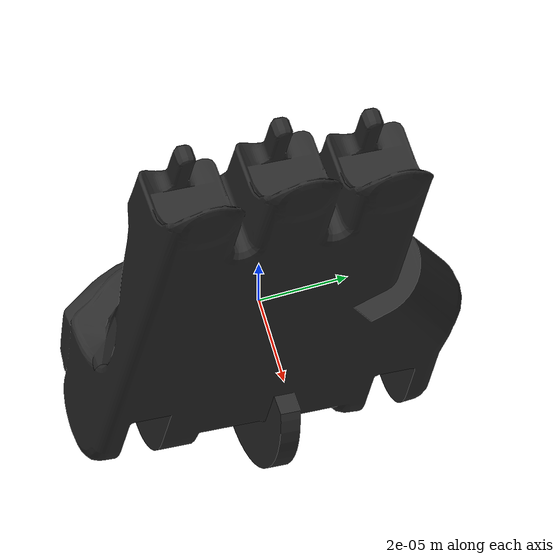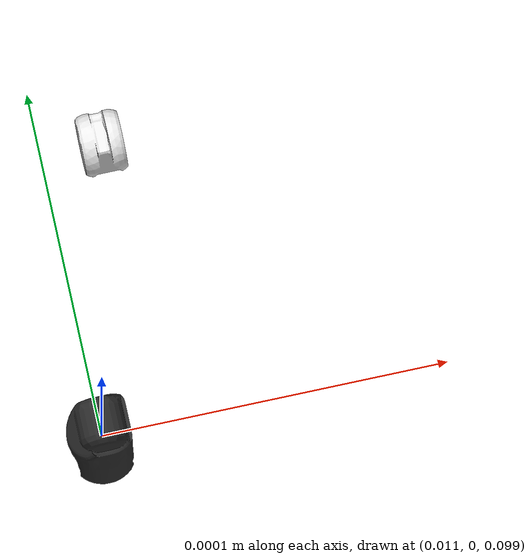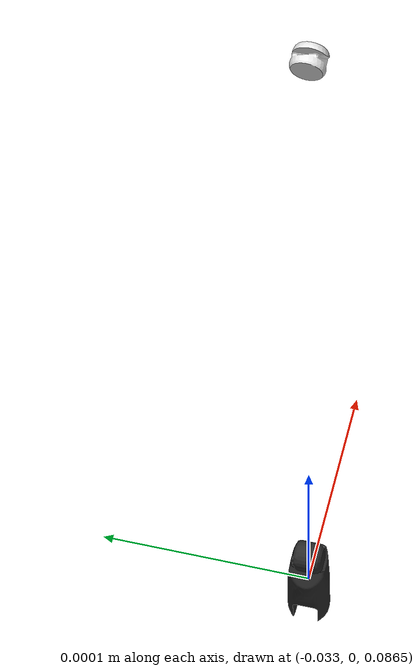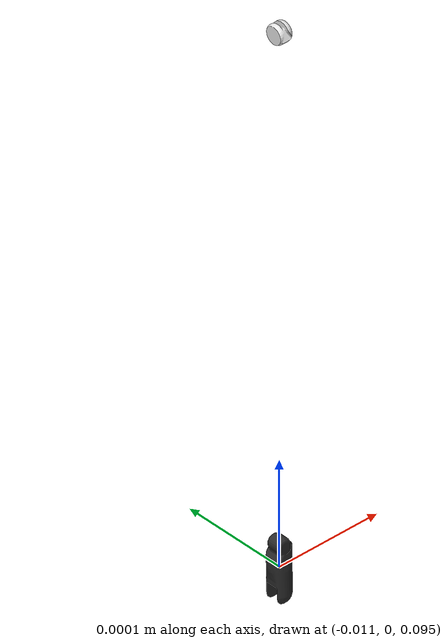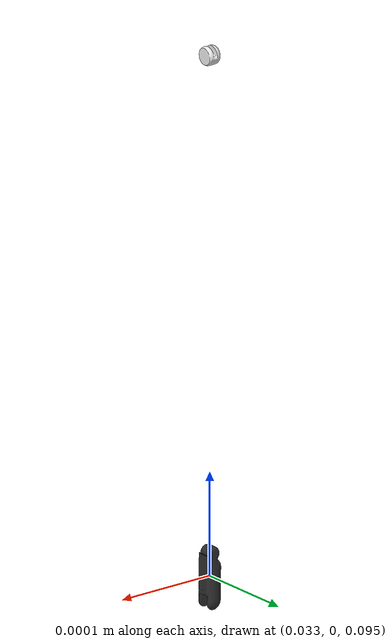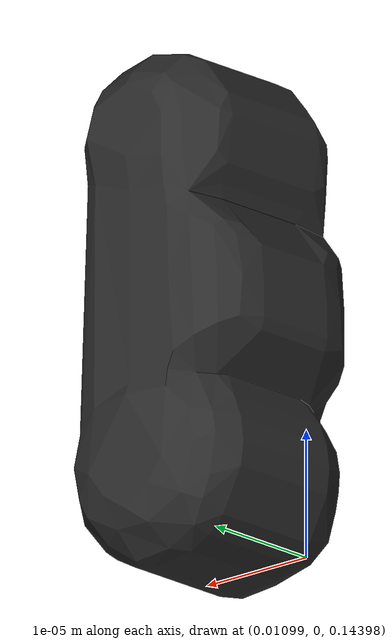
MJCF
<mujoco model="right_shadow_hand">
  <compiler angle="radian" meshdir="assets" autolimits="true"/>

  <option cone="elliptic" impratio="10"/>

  <default>
    <default class="right_hand">
      <mesh scale="0.001 0.001 0.001"/>
      <joint axis="1 0 0" damping="0.05" armature="0.0002" frictionloss="0.01"/>
      <position forcerange="-1 1"/>

      <default class="wrist">
        <joint damping="0.5"/>
        <default class="wrist_y">
          <joint axis="0 1 0" range="-0.523599 0.174533"/>
          <position kp="10" ctrlrange="-0.523599 0.174533" forcerange="-10 10"/>
        </default>
        <default class="wrist_x">
          <joint range="-0.698132 0.488692"/>
          <position kp="8" ctrlrange="-0.698132 0.488692" forcerange="-5 5"/>
        </default>
      </default>

      <default class="thumb">
        <default class="thbase">
          <joint axis="0 0 -1" range="-1.0472 1.0472"/>
          <position kp="0.4" ctrlrange="-1.0472 1.0472" forcerange="-3 3"/>
        </default>
        <default class="thproximal">
          <joint range="0 1.22173"/>
          <position ctrlrange="0 1.22173" forcerange="-2 2"/>
        </default>
        <default class="thhub">
          <joint range="-0.20944 0.20944"/>
          <position kp="0.5" ctrlrange="-0.20944 0.20944"/>
        </default>
        <default class="thmiddle">
          <joint axis="0 -1 0" range="-0.698132 0.698132"/>
          <position kp="1.5" ctrlrange="-0.698132 0.698132"/>
        </default>
        <default class="thdistal">
          <joint range="-0.261799 1.5708"/>
          <position ctrlrange="-0.261799 1.5708"/>
        </default>
      </default>

      <default class="metacarpal">
        <joint axis="0.573576 0 0.819152" range="0 0.785398"/>
        <position ctrlrange="0 0.785398"/>
      </default>
      <default class="knuckle">
        <joint axis="0 -1 0" range="-0.349066 0.349066"/>
        <position ctrlrange="-0.349066 0.349066"/>
      </default>
      <default class="proximal">
        <joint range="-0.261799 1.5708"/>
        <position ctrlrange="-0.261799 1.5708"/>
      </default>
      <default class="middle_distal">
        <joint range="0 1.5708"/>
        <position kp="0.5" ctrlrange="0 3.1415"/>
      </default>

      <default class="plastic">
        <geom solimp="0.5 0.99 0.0001" solref="0.005 1"/>
        <default class="plastic_visual">
          <geom type="mesh" material="black" contype="0" conaffinity="0" group="2"/>
        </default>
        <default class="plastic_collision">
          <geom group="3"/>
        </default>
        <default class="plastic_reference">
          <geom type="mesh" rgba="0 1 0 1" contype="0" conaffinity="0" group="2"/>
        </default>
      </default>
    </default>
  </default>

  <asset>
    <material name="black" specular="0.5" shininess="0.25" rgba="0.16355 0.16355 0.16355 1"/>
    <material name="gray" specular="0.0" shininess="0.25" rgba="0.80848 0.80848 0.80848 1"/>
    <material name="metallic" specular="0" shininess="0.25" rgba="0.9 0.9 0.9 1"/>

    <mesh class="right_hand" file="forearm_0.obj"/>
    <mesh class="right_hand" file="forearm_1.obj"/>
    <mesh class="right_hand" file="forearm_collision.obj"/>
    <mesh class="right_hand" file="wrist.obj"/>
    <mesh class="right_hand" file="palm.obj"/>
    <mesh class="right_hand" file="f_knuckle.obj"/>
    <mesh class="right_hand" file="f_proximal.obj"/>
    <mesh class="right_hand" file="f_middle.obj"/>
    <mesh class="right_hand" file="f_distal_pst.obj"/>
    <mesh class="right_hand" file="lf_metacarpal.obj"/>
    <mesh class="right_hand" file="th_proximal.obj"/>
    <mesh class="right_hand" file="th_middle.obj"/>
    <mesh class="right_hand" file="th_distal_pst.obj"/>
  </asset>

  <worldbody>
    <body name="rh_palm">
      <body name="rh_palm_ref" quat="1 0 1 0">
        <geom quat="-1 0 1 0" class="plastic_reference" mesh="palm" rgba="0 1 0 1"/>
      </body>
      <inertial mass="0.3" pos="0 0 0.035" quat="1 0 0 1" diaginertia="0.0005287 0.0003581 0.000191"/>
      <freejoint/>
      <site name="grasp_site" pos="0 -.035 0.09" group="4"/>
      <geom class="plastic_visual" mesh="palm"/>
      <geom size="0.031 0.0035 0.049" pos="0.011 0.0085 0.038" type="box" class="plastic_collision"/>
      <geom size="0.018 0.0085 0.049" pos="-0.002 -0.0035 0.038" type="box" class="plastic_collision"/>
      <geom size="0.013 0.0085 0.005" pos="0.029 -0.0035 0.082" type="box" class="plastic_collision"/>
      <geom size="0.013 0.007 0.009" pos="0.0265 -0.001 0.07" quat="0.987241 0.0990545 0.0124467 0.124052"
        type="box" class="plastic_collision"/>
      <geom size="0.0105 0.0135 0.012" pos="0.0315 -0.0085 0.001" type="box" class="plastic_collision"/>
      <geom size="0.011 0.0025 0.015" pos="0.0125 -0.015 0.004" quat="0.971338 0 0 -0.237703" type="box"
        class="plastic_collision"/>
      <geom size="0.009 0.012 0.002" pos="0.011 0 0.089" type="box" class="plastic_collision"/>
      <geom size="0.01 0.012 0.02" pos="-0.03 0 0.009" type="box" class="plastic_collision"/>
      <body name="rh_ffknuckle" pos="0.033 0 0.095">
        <inertial mass="0.008" pos="0 0 0" quat="0.5 0.5 -0.5 0.5" diaginertia="3.2e-07 2.6e-07 2.6e-07"/>
        <joint name="rh_FFJ4" class="knuckle"/>
        <geom pos="0 0 0.0005" class="plastic_visual" mesh="f_knuckle" material="metallic"/>
        <geom size="0.009 0.009" quat="1 0 1 0" type="cylinder" class="plastic_collision"/>
        <body name="rh_ffproximal">
          <inertial mass="0.03" pos="0 0 0.0225" quat="1 0 0 1" diaginertia="1e-05 9.8e-06 1.8e-06"/>
          <joint name="rh_FFJ3" class="proximal"/>
          <geom class="plastic_visual" mesh="f_proximal"/>
          <geom size="0.009 0.02" pos="0 0 0.025" type="capsule" class="plastic_collision"/>
          <body name="rh_ffmiddle" pos="0 0 0.045">
            <inertial mass="0.017" pos="0 0 0.0125" quat="1 0 0 1" diaginertia="2.7e-06 2.6e-06 8.7e-07"/>
            <joint name="rh_FFJ2" class="middle_distal"/>
            <geom class="plastic_visual" mesh="f_middle"/>
            <geom size="0.009 0.0125" pos="0 0 0.0125" type="capsule" class="plastic_collision"/>
            <body name="rh_ffdistal" pos="0 0 0.025">
              <inertial mass="0.013" pos="0 0 0.0130769" quat="1 0 0 1"
                diaginertia="1.28092e-06 1.12092e-06 5.3e-07"/>
              <joint name="rh_FFJ1" class="middle_distal"/>
              <geom class="plastic_visual" mesh="f_distal_pst"/>
              <geom class="plastic_collision" type="mesh" mesh="f_distal_pst"/>
            </body>
          </body>
        </body>
      </body>
      <body name="rh_mfknuckle" pos="0.011 0 0.099">
        <inertial mass="0.008" pos="0 0 0" quat="0.5 0.5 -0.5 0.5" diaginertia="3.2e-07 2.6e-07 2.6e-07"/>
        <joint name="rh_MFJ4" class="knuckle"/>
        <geom pos="0 0 0.0005" class="plastic_visual" mesh="f_knuckle" material="metallic"/>
        <geom size="0.009 0.009" quat="1 0 1 0" type="cylinder" class="plastic_collision"/>
        <body name="rh_mfproximal">
          <inertial mass="0.03" pos="0 0 0.0225" quat="1 0 0 1" diaginertia="1e-05 9.8e-06 1.8e-06"/>
          <joint name="rh_MFJ3" class="proximal"/>
          <geom class="plastic_visual" mesh="f_proximal"/>
          <geom size="0.009 0.02" pos="0 0 0.025" type="capsule" class="plastic_collision"/>
          <body name="rh_mfmiddle" pos="0 0 0.045">
            <inertial mass="0.017" pos="0 0 0.0125" quat="1 0 0 1" diaginertia="2.7e-06 2.6e-06 8.7e-07"/>
            <joint name="rh_MFJ2" class="middle_distal"/>
            <geom class="plastic_visual" mesh="f_middle"/>
            <geom size="0.009 0.0125" pos="0 0 0.0125" type="capsule" class="plastic_collision"/>
            <body name="rh_mfdistal" pos="0 0 0.025">
              <inertial mass="0.013" pos="0 0 0.0130769" quat="1 0 0 1"
                diaginertia="1.28092e-06 1.12092e-06 5.3e-07"/>
              <joint name="rh_MFJ1" class="middle_distal"/>
              <geom class="plastic_visual" mesh="f_distal_pst"/>
              <geom class="plastic_collision" type="mesh" mesh="f_distal_pst"/>
            </body>
          </body>
        </body>
      </body>
      <body name="rh_rfknuckle" pos="-0.011 0 0.095">
        <inertial mass="0.008" pos="0 0 0" quat="0.5 0.5 -0.5 0.5" diaginertia="3.2e-07 2.6e-07 2.6e-07"/>
        <joint name="rh_RFJ4" class="knuckle" axis="0 1 0"/>
        <geom pos="0 0 0.0005" class="plastic_visual" mesh="f_knuckle" material="metallic"/>
        <geom size="0.009 0.009" quat="1 0 1 0" type="cylinder" class="plastic_collision"/>
        <body name="rh_rfproximal">
          <inertial mass="0.03" pos="0 0 0.0225" quat="1 0 0 1" diaginertia="1e-05 9.8e-06 1.8e-06"/>
          <joint name="rh_RFJ3" class="proximal"/>
          <geom class="plastic_visual" mesh="f_proximal"/>
          <geom size="0.009 0.02" pos="0 0 0.025" type="capsule" class="plastic_collision"/>
          <body name="rh_rfmiddle" pos="0 0 0.045">
            <inertial mass="0.017" pos="0 0 0.0125" quat="1 0 0 1" diaginertia="2.7e-06 2.6e-06 8.7e-07"/>
            <joint name="rh_RFJ2" class="middle_distal"/>
            <geom class="plastic_visual" mesh="f_middle"/>
            <geom size="0.009 0.0125" pos="0 0 0.0125" type="capsule" class="plastic_collision"/>
            <body name="rh_rfdistal" pos="0 0 0.025">
              <inertial mass="0.013" pos="0 0 0.0130769" quat="1 0 0 1"
                diaginertia="1.28092e-06 1.12092e-06 5.3e-07"/>
              <joint name="rh_RFJ1" class="middle_distal"/>
              <geom class="plastic_visual" mesh="f_distal_pst"/>
              <geom class="plastic_collision" type="mesh" mesh="f_distal_pst"/>
            </body>
          </body>
        </body>
      </body>
      <body name="rh_lfmetacarpal" pos="-0.033 0 0.02071">
        <inertial mass="0.03" pos="0 0 0.04" quat="1 0 0 1" diaginertia="1.638e-05 1.45e-05 4.272e-06"/>
        <joint name="rh_LFJ5" class="metacarpal"/>
        <geom class="plastic_visual" mesh="lf_metacarpal"/>
        <geom size="0.011 0.012 0.025" pos="0.002 0 0.033" type="box" class="plastic_collision"/>
        <body name="rh_lfknuckle" pos="0 0 0.06579">
          <inertial mass="0.008" pos="0 0 0" quat="0.5 0.5 -0.5 0.5" diaginertia="3.2e-07 2.6e-07 2.6e-07"/>
          <joint name="rh_LFJ4" class="knuckle" axis="0 1 0"/>
          <geom pos="0 0 0.0005" class="plastic_visual" mesh="f_knuckle" material="metallic"/>
          <geom size="0.009 0.009" quat="1 0 1 0" type="cylinder" class="plastic_collision"/>
          <body name="rh_lfproximal">
            <inertial mass="0.03" pos="0 0 0.0225" quat="1 0 0 1" diaginertia="1e-05 9.8e-06 1.8e-06"/>
            <joint name="rh_LFJ3" class="proximal"/>
            <geom class="plastic_visual" mesh="f_proximal"/>
            <geom size="0.009 0.02" pos="0 0 0.025" type="capsule" class="plastic_collision"/>
            <body name="rh_lfmiddle" pos="0 0 0.045">
              <inertial mass="0.017" pos="0 0 0.0125" quat="1 0 0 1" diaginertia="2.7e-06 2.6e-06 8.7e-07"/>
              <joint name="rh_LFJ2" class="middle_distal"/>
              <geom class="plastic_visual" mesh="f_middle"/>
              <geom size="0.009 0.0125" pos="0 0 0.0125" type="capsule" class="plastic_collision"/>
              <body name="rh_lfdistal" pos="0 0 0.025">
                <inertial mass="0.013" pos="0 0 0.0130769" quat="1 0 0 1"
                  diaginertia="1.28092e-06 1.12092e-06 5.3e-07"/>
                <joint name="rh_LFJ1" class="middle_distal"/>
                <geom class="plastic_visual" mesh="f_distal_pst"/>
                <geom class="plastic_collision" type="mesh" mesh="f_distal_pst"/>
              </body>
            </body>
          </body>
        </body>
      </body>
      <body name="rh_thbase" pos="0.034 -0.00858 0.029" quat="0.92388 0 0.382683 0">
        <inertial mass="0.01" pos="0 0 0" diaginertia="1.6e-07 1.6e-07 1.6e-07"/>
        <joint name="rh_THJ5" class="thbase"/>
        <geom class="plastic_collision" size="0.013"/>
        <body name="rh_thproximal">
          <inertial mass="0.04" pos="0 0 0.019" diaginertia="1.36e-05 1.36e-05 3.13e-06"/>
          <joint name="rh_THJ4" class="thproximal"/>
          <geom class="plastic_visual" mesh="th_proximal"/>
          <geom class="plastic_collision" size="0.0105 0.009" pos="0 0 0.02" type="capsule"/>
          <body name="rh_thhub" pos="0 0 0.038">
            <inertial mass="0.005" pos="0 0 0" diaginertia="1e-06 1e-06 3e-07"/>
            <joint name="rh_THJ3" class="thhub"/>
            <geom size="0.011" class="plastic_collision"/>
            <body name="rh_thmiddle">
              <inertial mass="0.02" pos="0 0 0.016" diaginertia="5.1e-06 5.1e-06 1.21e-06"/>
              <joint name="rh_THJ2" class="thmiddle"/>
              <geom class="plastic_visual" mesh="th_middle"/>
              <geom size="0.009 0.009" pos="0 0 0.012" type="capsule" class="plastic_collision"/>
              <geom size="0.01" pos="0 0 0.03" class="plastic_collision"/>
              <body name="rh_thdistal" pos="0 0 0.032" quat="1 0 0 -1">
                <inertial mass="0.017" pos="0 0 0.0145588" quat="1 0 0 1"
                  diaginertia="2.37794e-06 2.27794e-06 1e-06"/>
                <joint name="rh_THJ1" class="thdistal"/>
                <geom class="plastic_visual" mesh="th_distal_pst"/>
                <geom class="plastic_collision" type="mesh" mesh="th_distal_pst"/>
              </body>
            </body>
          </body>
        </body>
      </body>
    </body>
  </worldbody>

  <contact>
    <exclude body1="rh_thproximal" body2="rh_thmiddle"/>
  </contact>

  <tendon>
    <fixed name="rh_FFJ0">
      <joint joint="rh_FFJ2" coef="1"/>
      <joint joint="rh_FFJ1" coef="1"/>
    </fixed>
    <fixed name="rh_MFJ0">
      <joint joint="rh_MFJ2" coef="1"/>
      <joint joint="rh_MFJ1" coef="1"/>
    </fixed>
    <fixed name="rh_RFJ0">
      <joint joint="rh_RFJ2" coef="1"/>
      <joint joint="rh_RFJ1" coef="1"/>
    </fixed>
    <fixed name="rh_LFJ0">
      <joint joint="rh_LFJ2" coef="1"/>
      <joint joint="rh_LFJ1" coef="1"/>
    </fixed>
  </tendon>

  <actuator>
    <position name="rh_THJ5_actuator" joint="rh_THJ5" class="thbase"/>
    <position name="rh_THJ4_actuator" joint="rh_THJ4" class="thproximal"/>
    <position name="rh_THJ3_actuator" joint="rh_THJ3" class="thhub"/>
    <position name="rh_THJ2_actuator" joint="rh_THJ2" class="thmiddle"/>
    <position name="rh_THJ1_actuator" joint="rh_THJ1" class="thdistal"/>
    <position name="rh_FFJ4_actuator" joint="rh_FFJ4" class="knuckle"/>
    <position name="rh_FFJ3_actuator" joint="rh_FFJ3" class="proximal"/>
    <position name="rh_FFJ2_actuator" joint="rh_FFJ2" class="middle_distal"/>
    <position name="rh_FFJ1_actuator" joint="rh_FFJ1" class="middle_distal"/>
    <position name="rh_MFJ4_actuator" joint="rh_MFJ4" class="knuckle"/>
    <position name="rh_MFJ3_actuator" joint="rh_MFJ3" class="proximal"/>
    <position name="rh_MFJ2_actuator" joint="rh_MFJ2" class="middle_distal"/>
    <position name="rh_MFJ1_actuator" joint="rh_MFJ1" class="middle_distal"/>
    <position name="rh_RFJ4_actuator" joint="rh_RFJ4" class="knuckle"/>
    <position name="rh_RFJ3_actuator" joint="rh_RFJ3" class="proximal"/>
    <position name="rh_RFJ2_actuator" joint="rh_RFJ2" class="middle_distal"/>
    <position name="rh_RFJ1_actuator" joint="rh_RFJ1" class="middle_distal"/>
    <position name="rh_LFJ5_actuator" joint="rh_LFJ5" class="metacarpal"/>
    <position name="rh_LFJ4_actuator" joint="rh_LFJ4" class="knuckle"/>
    <position name="rh_LFJ3_actuator" joint="rh_LFJ3" class="proximal"/>
    <position name="rh_LFJ2_actuator" joint="rh_LFJ2" class="middle_distal"/>
    <position name="rh_LFJ1_actuator" joint="rh_LFJ1" class="middle_distal"/>
  </actuator>
</mujoco>
